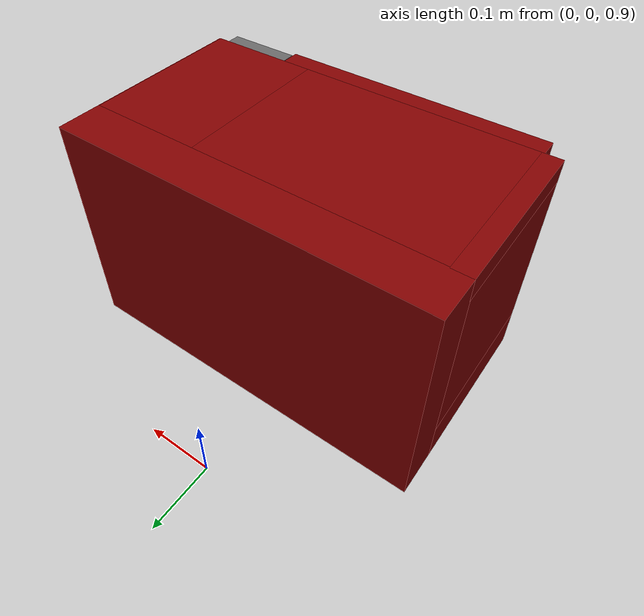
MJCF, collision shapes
<?xml version='1.0' encoding='utf-8'?>
<mujoco model="dual UR5e setup"><compiler angle="radian" autolimits="true" assetdir="assets" meshdir="assets" texturedir="assets" />

  <option sdf_iterations="10" sdf_initpoints="20" />
  <default>
    <default class="dw">
      <default class="dw-visual">
        <geom type="mesh" contype="0" conaffinity="0" group="0" mass="0" />
      </default>
      <default class="dw-collision">
        <geom type="mesh" group="3" friction="0.1" solimp="0.998 0.998 0.001" solref="0.004 1" density="1" />
      </default>
      <default class="dw-collision_basket">
        <geom type="mesh" group="3" friction="0.1" solimp="0.998 0.998 0.001" solref="0.004 1" density="1" />
      </default>
      <default class="dw-collision_holder">
        <geom type="mesh" group="3" friction="0.1" solimp="0.998 0.998 0.001" solref="0.004 1" density="1" />
      </default>
    </default>
    <default class="2f85">
      <mesh scale="0.001 0.001 0.001" />
      <general biastype="affine" />
      <joint axis="1 0 0" />
      <default class="2f85-driver">
        <joint range="0 0.8" armature="0.005" damping="0.1" solimplimit="0.95 0.99 0.001" solreflimit="0.005 1" />
      </default>
      <default class="2f85-follower">
        <joint range="-0.872664 0.872664" armature="0.001" pos="0 -0.018 0.0065" solimplimit="0.95 0.99 0.001" solreflimit="0.005 1" />
      </default>
      <default class="2f85-spring_link">
        <joint range="-0.29670597283 0.8" armature="0.001" stiffness="0.05" springref="2.62" damping="0.00125" />
      </default>
      <default class="2f85-coupler">
        <joint range="-1.57 0" armature="0.001" solimplimit="0.95 0.99 0.001" solreflimit="0.005 1" />
      </default>
      <default class="2f85-visual">
        <geom type="mesh" contype="0" conaffinity="0" group="0" />
      </default>
      <default class="2f85-collision">
        <geom type="mesh" group="3" />
        <default class="2f85-pad_box1">
          <geom mass="0" type="box" pos="0 -0.0026 0.028125" size="0.011 0.004 0.009375" friction="4" solimp="0.95 0.99 0.001" solref="0.004 1" priority="1" rgba="0.55 0.55 0.55 1" />
        </default>
        <default class="2f85-pad_box2">
          <geom mass="0" type="box" pos="0 -0.0026 0.009375" size="0.011 0.004 0.009375" friction="3" solimp="0.95 0.99 0.001" solref="0.004 1" priority="1" rgba="0.45 0.45 0.45 1" />
        </default>
      </default>
    </default>
  </default>
  <asset>
    <texture type="2d" name="groundplane" builtin="checker" mark="edge" rgb1="0.2 0.3 0.4" rgb2="0.1 0.2 0.3" markrgb="0.8 0.8 0.8" width="300" height="300" />
    <material name="groundplane" texture="groundplane" texuniform="true" texrepeat="5 5" reflectance="0.2" />
    <texture type="2d" name="wall_tex_paint" file="kitchen/wall/paint.png" />
    <material name="wall_paint_mat" texture="wall_tex_paint" shininess="0.15" />
    <texture type="2d" name="gr-countertop-marble" file="kitchen/counter/marble.png" />
    <material name="gr-countertop-granite" texture="gr-countertop-marble" texuniform="true" texrepeat="3 3" shininess="0.1" reflectance="0.1" />
    <texture type="2d" name="mw_tex_0" file="microwave/tex_2.png" />
    <texture type="2d" name="mw_tex_1" file="microwave/tex_0.png" />
    <texture type="2d" name="mw_tex_2" file="microwave/tex_1.png" />
    <material name="mw_mat_0" texture="mw_tex_0" shininess="0.25" />
    <material name="mw_mat_1" texture="mw_tex_1" shininess="0.25" />
    <material name="mw_mat_2" texture="mw_tex_2" shininess="0.25" />

    <mesh name="mw_vis0" file="microwave/model_0.obj" scale="0.5542271 0.3608248 0.5542271" />
    <mesh name="mw_vis1" file="microwave/model_1.obj" scale="0.5542271 0.3608248 0.5542271" />
    <mesh name="mw_vis2" file="microwave/model_2.obj" scale="0.5542271 0.3608248 0.5542271" />

    <mesh name="mw_door0" file="microwave/door_0.obj" scale="0.5542271 0.3608248 0.5542271" />
    <mesh name="mw_door1" file="microwave/door_1.obj" scale="0.5542271 0.3608248 0.5542271" />
    <mesh name="mw_door2" file="microwave/door_2.obj" scale="0.5542271 0.3608248 0.5542271" />
    <mesh file="kitchen/cupcake_11/visual/model_normalized_0.obj" name="cupcake_model_normalized_0_vis" scale="0.05 0.05 0.05" refquat="1.0 0.0 0.0 0.0" />
    <mesh file="kitchen/cupcake_11/collision/model_normalized_collision_22.obj" name="cupcake_model_normalized_collision_22._coll" scale="0.05 0.05 0.05" refquat="1.0 0.0 0.0 0.0" />
    <mesh file="kitchen/cupcake_11/collision/model_normalized_collision_23.obj" name="cupcake_model_normalized_collision_23._coll" scale="0.05 0.05 0.05" refquat="1.0 0.0 0.0 0.0" />
    <mesh file="kitchen/cupcake_11/collision/model_normalized_collision_21.obj" name="cupcake_model_normalized_collision_21._coll" scale="0.05 0.05 0.05" refquat="1.0 0.0 0.0 0.0" />
    <mesh file="kitchen/cupcake_11/collision/model_normalized_collision_20.obj" name="cupcake_model_normalized_collision_20._coll" scale="0.05 0.05 0.05" refquat="1.0 0.0 0.0 0.0" />
    <mesh file="kitchen/cupcake_11/collision/model_normalized_collision_24.obj" name="cupcake_model_normalized_collision_24._coll" scale="0.05 0.05 0.05" refquat="1.0 0.0 0.0 0.0" />
    <mesh file="kitchen/cupcake_11/collision/model_normalized_collision_30.obj" name="cupcake_model_normalized_collision_30._coll" scale="0.05 0.05 0.05" refquat="1.0 0.0 0.0 0.0" />
    <mesh file="kitchen/cupcake_11/collision/model_normalized_collision_18.obj" name="cupcake_model_normalized_collision_18._coll" scale="0.05 0.05 0.05" refquat="1.0 0.0 0.0 0.0" />
    <mesh file="kitchen/cupcake_11/collision/model_normalized_collision_19.obj" name="cupcake_model_normalized_collision_19._coll" scale="0.05 0.05 0.05" refquat="1.0 0.0 0.0 0.0" />
    <mesh file="kitchen/cupcake_11/collision/model_normalized_collision_31.obj" name="cupcake_model_normalized_collision_31._coll" scale="0.05 0.05 0.05" refquat="1.0 0.0 0.0 0.0" />
    <mesh file="kitchen/cupcake_11/collision/model_normalized_collision_25.obj" name="cupcake_model_normalized_collision_25._coll" scale="0.05 0.05 0.05" refquat="1.0 0.0 0.0 0.0" />
    <mesh file="kitchen/cupcake_11/collision/model_normalized_collision_27.obj" name="cupcake_model_normalized_collision_27._coll" scale="0.05 0.05 0.05" refquat="1.0 0.0 0.0 0.0" />
    <mesh file="kitchen/cupcake_11/collision/model_normalized_collision_26.obj" name="cupcake_model_normalized_collision_26._coll" scale="0.05 0.05 0.05" refquat="1.0 0.0 0.0 0.0" />
    <mesh file="kitchen/cupcake_11/collision/model_normalized_collision_9.obj" name="cupcake_model_normalized_collision_9._coll" scale="0.05 0.05 0.05" refquat="1.0 0.0 0.0 0.0" />
    <mesh file="kitchen/cupcake_11/collision/model_normalized_collision_8.obj" name="cupcake_model_normalized_collision_8._coll" scale="0.05 0.05 0.05" refquat="1.0 0.0 0.0 0.0" />
    <mesh file="kitchen/cupcake_11/collision/model_normalized_collision_6.obj" name="cupcake_model_normalized_collision_6._coll" scale="0.05 0.05 0.05" refquat="1.0 0.0 0.0 0.0" />
    <mesh file="kitchen/cupcake_11/collision/model_normalized_collision_7.obj" name="cupcake_model_normalized_collision_7._coll" scale="0.05 0.05 0.05" refquat="1.0 0.0 0.0 0.0" />
    <mesh file="kitchen/cupcake_11/collision/model_normalized_collision_5.obj" name="cupcake_model_normalized_collision_5._coll" scale="0.05 0.05 0.05" refquat="1.0 0.0 0.0 0.0" />
    <mesh file="kitchen/cupcake_11/collision/model_normalized_collision_4.obj" name="cupcake_model_normalized_collision_4._coll" scale="0.05 0.05 0.05" refquat="1.0 0.0 0.0 0.0" />
    <mesh file="kitchen/cupcake_11/collision/model_normalized_collision_0.obj" name="cupcake_model_normalized_collision_0._coll" scale="0.05 0.05 0.05" refquat="1.0 0.0 0.0 0.0" />
    <mesh file="kitchen/cupcake_11/collision/model_normalized_collision_1.obj" name="cupcake_model_normalized_collision_1._coll" scale="0.05 0.05 0.05" refquat="1.0 0.0 0.0 0.0" />
    <mesh file="kitchen/cupcake_11/collision/model_normalized_collision_3.obj" name="cupcake_model_normalized_collision_3._coll" scale="0.05 0.05 0.05" refquat="1.0 0.0 0.0 0.0" />
    <mesh file="kitchen/cupcake_11/collision/model_normalized_collision_2.obj" name="cupcake_model_normalized_collision_2._coll" scale="0.05 0.05 0.05" refquat="1.0 0.0 0.0 0.0" />
    <mesh file="kitchen/cupcake_11/collision/model_normalized_collision_17.obj" name="cupcake_model_normalized_collision_17._coll" scale="0.05 0.05 0.05" refquat="1.0 0.0 0.0 0.0" />
    <mesh file="kitchen/cupcake_11/collision/model_normalized_collision_16.obj" name="cupcake_model_normalized_collision_16._coll" scale="0.05 0.05 0.05" refquat="1.0 0.0 0.0 0.0" />
    <mesh file="kitchen/cupcake_11/collision/model_normalized_collision_28.obj" name="cupcake_model_normalized_collision_28._coll" scale="0.05 0.05 0.05" refquat="1.0 0.0 0.0 0.0" />
    <mesh file="kitchen/cupcake_11/collision/model_normalized_collision_14.obj" name="cupcake_model_normalized_collision_14._coll" scale="0.05 0.05 0.05" refquat="1.0 0.0 0.0 0.0" />
    <mesh file="kitchen/cupcake_11/collision/model_normalized_collision_15.obj" name="cupcake_model_normalized_collision_15._coll" scale="0.05 0.05 0.05" refquat="1.0 0.0 0.0 0.0" />
    <mesh file="kitchen/cupcake_11/collision/model_normalized_collision_29.obj" name="cupcake_model_normalized_collision_29._coll" scale="0.05 0.05 0.05" refquat="1.0 0.0 0.0 0.0" />
    <mesh file="kitchen/cupcake_11/collision/model_normalized_collision_11.obj" name="cupcake_model_normalized_collision_11._coll" scale="0.05 0.05 0.05" refquat="1.0 0.0 0.0 0.0" />
    <mesh file="kitchen/cupcake_11/collision/model_normalized_collision_10.obj" name="cupcake_model_normalized_collision_10._coll" scale="0.05 0.05 0.05" refquat="1.0 0.0 0.0 0.0" />
    <mesh file="kitchen/cupcake_11/collision/model_normalized_collision_12.obj" name="cupcake_model_normalized_collision_12._coll" scale="0.05 0.05 0.05" refquat="1.0 0.0 0.0 0.0" />
    <mesh file="kitchen/cupcake_11/collision/model_normalized_collision_13.obj" name="cupcake_model_normalized_collision_13._coll" scale="0.05 0.05 0.05" refquat="1.0 0.0 0.0 0.0" />
    <texture type="2d" name="cupcake_image0" file="kitchen/cupcake_11/visual/image0.png" />
    <material name="cupcake_CupCake_PBR" texture="cupcake_image0" specular="0.5" shininess="0.25" />

    <texture type="2d" name="dw-basket" file="kitchen/dishwasher/basket.png" />
    <texture type="2d" name="dw-body" file="kitchen/dishwasher/body.png" />
    <texture type="2d" name="dw-bottom" file="kitchen/dishwasher/bottom.png" />
    <texture type="2d" name="dw-door" file="kitchen/dishwasher/door.png" />
    <texture type="2d" name="dw-middle" file="kitchen/dishwasher/middle.png" />

    <material name="dw-dishwasher" rgba="0.3 0.3 0.3 1" />
    <material name="dw-basket" texture="dw-basket" rgba="0.3 0.3 0.3 1" />
    <material name="dw-body" texture="dw-body" />
    <material name="dw-bottom" texture="dw-bottom" />
    <material name="dw-door" texture="dw-door" />
    <material name="dw-middle" texture="dw-middle" />

    <mesh name="dw-dish_washer_body_001" file="kitchen/dishwasher/visual/dish_washer_body_001.obj" scale="1.0 1.0 1.0" />
    <mesh name="dw-dish_washer_door_001" file="kitchen/dishwasher/visual/dish_washer_door_001.obj" scale="1.0 1.0 1.0" />
    <mesh name="dw-dish_washer_mid_001" file="kitchen/dishwasher/visual/dish_washer_mid_001.obj" scale="1.0 1.0 1.0" />
    <mesh name="dw-dish_washer_mid_sprinkle" file="kitchen/dishwasher/visual/dish_washer_mid_sprinkle.obj" scale="1.0 1.0 1.0" />
    <mesh name="dw-dish_washer_bottom_001" file="kitchen/dishwasher/visual/dish_washer_bottom_001.obj" scale="1.0 1.0 1.0" />
    <mesh name="dw-dish_washer_bottom_wheel" file="kitchen/dishwasher/visual/dish_washer_bottom_wheel.obj" scale="1.0 1.0 1.0" />
    <mesh name="dw-dish_washer_bottom_plates_holder_001" file="kitchen/dishwasher/visual/dish_washer_bottom_plates_holder_001.obj" scale="1.0 1.0 1.0" />
    <mesh name="dw-dish_washer_bottom_cuttlery_basket_001" file="kitchen/dishwasher/visual/dish_washer_bottom_cuttlery_basket_001.obj" scale="1.0 1.0 1.0" />

    <mesh name="dw-collision_door_001" file="kitchen/dishwasher/collision/collision_door_001.obj" scale="1.0 1.0 1.0" />
    <mesh name="dw-collision_door_003" file="kitchen/dishwasher/collision/collision_door_003.obj" scale="1.0 1.0 1.0" />
    <mesh name="dw-collision_door_004" file="kitchen/dishwasher/collision/collision_door_004.obj" scale="1.0 1.0 1.0" />
    <mesh name="dw-collision_door_006" file="kitchen/dishwasher/collision/collision_door_006.obj" scale="1.0 1.0 1.0" />
    <mesh name="dw-collision_door_007" file="kitchen/dishwasher/collision/collision_door_007.obj" scale="1.0 1.0 1.0" />
    <mesh name="dw-collision_door_008" file="kitchen/dishwasher/collision/collision_door_008.obj" scale="1.0 1.0 1.0" />
    <mesh name="dw-collision_door_009" file="kitchen/dishwasher/collision/collision_door_009.obj" scale="1.0 1.0 1.0" />
    <mesh name="dw-collision_tray_mid_001" file="kitchen/dishwasher/collision/collision_tray_mid_001.obj" scale="1.0 1.0 1.0" />
    <mesh name="dw-collision_tray_mid_002" file="kitchen/dishwasher/collision/collision_tray_mid_002.obj" scale="1.0 1.0 1.0" />
    <mesh name="dw-collision_tray_mid_003" file="kitchen/dishwasher/collision/collision_tray_mid_003.obj" scale="1.0 1.0 1.0" />
    <mesh name="dw-collision_tray_mid_004" file="kitchen/dishwasher/collision/collision_tray_mid_004.obj" scale="1.0 1.0 1.0" />
    <mesh name="dw-collision_tray_mid_005" file="kitchen/dishwasher/collision/collision_tray_mid_005.obj" scale="1.0 1.0 1.0" />
    <mesh name="dw-collision_tray_mid_006" file="kitchen/dishwasher/collision/collision_tray_mid_006.obj" scale="1.0 1.0 1.0" />
    <mesh name="dw-collision_tray_mid_007" file="kitchen/dishwasher/collision/collision_tray_mid_007.obj" scale="1.0 1.0 1.0" />
    <mesh name="dw-collision_tray_mid_008" file="kitchen/dishwasher/collision/collision_tray_mid_008.obj" scale="1.0 1.0 1.0" />
    <mesh name="dw-collision_tray_mid_009" file="kitchen/dishwasher/collision/collision_tray_mid_009.obj" scale="1.0 1.0 1.0" />
    <mesh name="dw-collision_tray_mid_010" file="kitchen/dishwasher/collision/collision_tray_mid_010.obj" scale="1.0 1.0 1.0" />
    <mesh name="dw-collision_tray_mid_011" file="kitchen/dishwasher/collision/collision_tray_mid_011.obj" scale="1.0 1.0 1.0" />
    <mesh name="dw-collision_tray_mid_012" file="kitchen/dishwasher/collision/collision_tray_mid_012.obj" scale="1.0 1.0 1.0" />
    <mesh name="dw-collision_tray_mid_013" file="kitchen/dishwasher/collision/collision_tray_mid_013.obj" scale="1.0 1.0 1.0" />
    <mesh name="dw-collision_tray_mid_014" file="kitchen/dishwasher/collision/collision_tray_mid_014.obj" scale="1.0 1.0 1.0" />
    <mesh name="dw-collision_tray_mid_015" file="kitchen/dishwasher/collision/collision_tray_mid_015.obj" scale="1.0 1.0 1.0" />
    <mesh name="dw-collision_tray_mid_016" file="kitchen/dishwasher/collision/collision_tray_mid_016.obj" scale="1.0 1.0 1.0" />
    <mesh name="dw-collision_tray_mid_017" file="kitchen/dishwasher/collision/collision_tray_mid_017.obj" scale="1.0 1.0 1.0" />
    <mesh name="dw-collision_tray_mid_018" file="kitchen/dishwasher/collision/collision_tray_mid_018.obj" scale="1.0 1.0 1.0" />
    <mesh name="dw-collision_tray_mid_019" file="kitchen/dishwasher/collision/collision_tray_mid_019.obj" scale="1.0 1.0 1.0" />
    <mesh name="dw-collision_tray_mid_020" file="kitchen/dishwasher/collision/collision_tray_mid_020.obj" scale="1.0 1.0 1.0" />
    <mesh name="dw-collision_tray_mid_021" file="kitchen/dishwasher/collision/collision_tray_mid_021.obj" scale="1.0 1.0 1.0" />
    <mesh name="dw-collision_tray_mid_022" file="kitchen/dishwasher/collision/collision_tray_mid_022.obj" scale="1.0 1.0 1.0" />
    <mesh name="dw-collision_tray_mid_023" file="kitchen/dishwasher/collision/collision_tray_mid_023.obj" scale="1.0 1.0 1.0" />
    <mesh name="dw-collision_tray_mid_024" file="kitchen/dishwasher/collision/collision_tray_mid_024.obj" scale="1.0 1.0 1.0" />
    <mesh name="dw-collision_tray_mid_025" file="kitchen/dishwasher/collision/collision_tray_mid_025.obj" scale="1.0 1.0 1.0" />
    <mesh name="dw-collision_tray_mid_026" file="kitchen/dishwasher/collision/collision_tray_mid_026.obj" scale="1.0 1.0 1.0" />
    <mesh name="dw-collision_tray_mid_027" file="kitchen/dishwasher/collision/collision_tray_mid_027.obj" scale="1.0 1.0 1.0" />
    <mesh name="dw-collision_tray_001" file="kitchen/dishwasher/collision/collision_tray_001.obj" scale="1.0 1.0 1.0" />
    <mesh name="dw-collision_tray_002" file="kitchen/dishwasher/collision/collision_tray_002.obj" scale="1.0 1.0 1.0" />
    <mesh name="dw-collision_tray_003" file="kitchen/dishwasher/collision/collision_tray_003.obj" scale="1.0 1.0 1.0" />
    <mesh name="dw-collision_tray_004" file="kitchen/dishwasher/collision/collision_tray_004.obj" scale="1.0 1.0 1.0" />
    <mesh name="dw-collision_tray_005" file="kitchen/dishwasher/collision/collision_tray_005.obj" scale="1.0 1.0 1.0" />
    <mesh name="dw-collision_tray_006" file="kitchen/dishwasher/collision/collision_tray_006.obj" scale="1.0 1.0 1.0" />
    <mesh name="dw-collision_tray_007" file="kitchen/dishwasher/collision/collision_tray_007.obj" scale="1.0 1.0 1.0" />
    <mesh name="dw-collision_tray_008" file="kitchen/dishwasher/collision/collision_tray_008.obj" scale="1.0 1.0 1.0" />
    <mesh name="dw-collision_tray_009" file="kitchen/dishwasher/collision/collision_tray_009.obj" scale="1.0 1.0 1.0" />
    <mesh name="dw-collision_tray_010" file="kitchen/dishwasher/collision/collision_tray_010.obj" scale="1.0 1.0 1.0" />
    <mesh name="dw-collision_tray_011" file="kitchen/dishwasher/collision/collision_tray_011.obj" scale="1.0 1.0 1.0" />
    <mesh name="dw-collision_tray_012" file="kitchen/dishwasher/collision/collision_tray_012.obj" scale="1.0 1.0 1.0" />
    <mesh name="dw-collision_tray_013" file="kitchen/dishwasher/collision/collision_tray_013.obj" scale="1.0 1.0 1.0" />
    <mesh name="dw-collision_tray_014" file="kitchen/dishwasher/collision/collision_tray_014.obj" scale="1.0 1.0 1.0" />
    <mesh name="dw-collision_tray_015" file="kitchen/dishwasher/collision/collision_tray_015.obj" scale="1.0 1.0 1.0" />
    <mesh name="dw-collision_tray_016" file="kitchen/dishwasher/collision/collision_tray_016.obj" scale="1.0 1.0 1.0" />
    <mesh name="dw-collision_tray_017" file="kitchen/dishwasher/collision/collision_tray_017.obj" scale="1.0 1.0 1.0" />
    <mesh name="dw-collision_tray_018" file="kitchen/dishwasher/collision/collision_tray_018.obj" scale="1.0 1.0 1.0" />
    <mesh name="dw-collision_tray_019" file="kitchen/dishwasher/collision/collision_tray_019.obj" scale="1.0 1.0 1.0" />
    <mesh name="dw-collision_tray_020" file="kitchen/dishwasher/collision/collision_tray_020.obj" scale="1.0 1.0 1.0" />
    <mesh name="dw-collision_tray_021" file="kitchen/dishwasher/collision/collision_tray_021.obj" scale="1.0 1.0 1.0" />
    <mesh name="dw-collision_tray_022" file="kitchen/dishwasher/collision/collision_tray_022.obj" scale="1.0 1.0 1.0" />
    <mesh name="dw-collision_tray_023" file="kitchen/dishwasher/collision/collision_tray_023.obj" scale="1.0 1.0 1.0" />
    <mesh name="dw-collision_tray_024" file="kitchen/dishwasher/collision/collision_tray_024.obj" scale="1.0 1.0 1.0" />
    <mesh name="dw-collision_tray_025" file="kitchen/dishwasher/collision/collision_tray_025.obj" scale="1.0 1.0 1.0" />
    <mesh name="dw-collision_tray_026" file="kitchen/dishwasher/collision/collision_tray_026.obj" scale="1.0 1.0 1.0" />
    <mesh name="dw-collision_tray_027" file="kitchen/dishwasher/collision/collision_tray_027.obj" scale="1.0 1.0 1.0" />
    <mesh name="dw-collision_tray_028" file="kitchen/dishwasher/collision/collision_tray_028.obj" scale="1.0 1.0 1.0" />
    <mesh name="dw-collision_tray_029" file="kitchen/dishwasher/collision/collision_tray_029.obj" scale="1.0 1.0 1.0" />
    <mesh name="dw-collision_tray_030" file="kitchen/dishwasher/collision/collision_tray_030.obj" scale="1.0 1.0 1.0" />
    <mesh name="dw-collision_tray_031" file="kitchen/dishwasher/collision/collision_tray_031.obj" scale="1.0 1.0 1.0" />
    <mesh name="dw-collision_tray_032" file="kitchen/dishwasher/collision/collision_tray_032.obj" scale="1.0 1.0 1.0" />
    <mesh name="dw-collision_tray_033" file="kitchen/dishwasher/collision/collision_tray_033.obj" scale="1.0 1.0 1.0" />
    <mesh name="dw-collision_holder_001" file="kitchen/dishwasher/collision/collision_holder_001.obj" scale="1.0 1.0 1.0" />
    <mesh name="dw-collision_holder_002" file="kitchen/dishwasher/collision/collision_holder_002.obj" scale="1.0 1.0 1.0" />
    <mesh name="dw-collision_holder_003" file="kitchen/dishwasher/collision/collision_holder_003.obj" scale="1.0 1.0 1.0" />
    <mesh name="dw-collision_holder_004" file="kitchen/dishwasher/collision/collision_holder_004.obj" scale="1.0 1.0 1.0" />
    <mesh name="dw-collision_holder_005" file="kitchen/dishwasher/collision/collision_holder_005.obj" scale="1.0 1.0 1.0" />
    <mesh name="dw-collision_holder_006" file="kitchen/dishwasher/collision/collision_holder_006.obj" scale="1.0 1.0 1.0" />
    <mesh name="dw-collision_holder_007" file="kitchen/dishwasher/collision/collision_holder_007.obj" scale="1.0 1.0 1.0" />
    <mesh name="dw-collision_holder_008" file="kitchen/dishwasher/collision/collision_holder_008.obj" scale="1.0 1.0 1.0" />
    <mesh name="dw-collision_holder_009" file="kitchen/dishwasher/collision/collision_holder_009.obj" scale="1.0 1.0 1.0" />
    <mesh name="dw-collision_holder_010" file="kitchen/dishwasher/collision/collision_holder_010.obj" scale="1.0 1.0 1.0" />
    <mesh name="dw-collision_holder_011" file="kitchen/dishwasher/collision/collision_holder_011.obj" scale="1.0 1.0 1.0" />
    <mesh name="dw-collision_holder_012" file="kitchen/dishwasher/collision/collision_holder_012.obj" scale="1.0 1.0 1.0" />
    <mesh name="dw-collision_holder_013" file="kitchen/dishwasher/collision/collision_holder_013.obj" scale="1.0 1.0 1.0" />
    <mesh name="dw-collision_holder_014" file="kitchen/dishwasher/collision/collision_holder_014.obj" scale="1.0 1.0 1.0" />
    <mesh name="dw-collision_dish_washer_mid_sprinkle" file="kitchen/dishwasher/collision/collision_dish_washer_mid_sprinkle.obj" scale="1.0 1.0 1.0" />
    <mesh name="dw-collision_dish_washer_bottom_basket_001" file="kitchen/dishwasher/collision/collision_dish_washer_bottom_basket_001.obj" scale="1.0 1.0 1.0" />
    <mesh name="dw-collision_dish_washer_bottom_basket_002" file="kitchen/dishwasher/collision/collision_dish_washer_bottom_basket_002.obj" scale="1.0 1.0 1.0" />
    <mesh name="dw-collision_dish_washer_bottom_basket_003" file="kitchen/dishwasher/collision/collision_dish_washer_bottom_basket_003.obj" scale="1.0 1.0 1.0" />
    <mesh name="dw-collision_dish_washer_bottom_basket_004" file="kitchen/dishwasher/collision/collision_dish_washer_bottom_basket_004.obj" scale="1.0 1.0 1.0" />
    <mesh name="dw-collision_dish_washer_bottom_basket_005" file="kitchen/dishwasher/collision/collision_dish_washer_bottom_basket_005.obj" scale="1.0 1.0 1.0" />
    <mesh name="dw-collision_dish_washer_bottom_basket_006" file="kitchen/dishwasher/collision/collision_dish_washer_bottom_basket_006.obj" scale="1.0 1.0 1.0" />
    <mesh name="dw-collision_dish_washer_bottom_basket_007" file="kitchen/dishwasher/collision/collision_dish_washer_bottom_basket_007.obj" scale="1.0 1.0 1.0" />
    <mesh name="dw-collision_dish_washer_bottom_basket_008" file="kitchen/dishwasher/collision/collision_dish_washer_bottom_basket_008.obj" scale="1.0 1.0 1.0" />
    <mesh name="dw-collision_dish_washer_bottom_basket_009" file="kitchen/dishwasher/collision/collision_dish_washer_bottom_basket_009.obj" scale="1.0 1.0 1.0" />
    <mesh name="dw-collision_dish_washer_bottom_basket_010" file="kitchen/dishwasher/collision/collision_dish_washer_bottom_basket_010.obj" scale="1.0 1.0 1.0" />
    <mesh name="dw-collision_dish_washer_bottom_basket_011" file="kitchen/dishwasher/collision/collision_dish_washer_bottom_basket_011.obj" scale="1.0 1.0 1.0" />
    <mesh name="dw-collision_dish_washer_bottom_basket_012" file="kitchen/dishwasher/collision/collision_dish_washer_bottom_basket_012.obj" scale="1.0 1.0 1.0" />
    <mesh name="dw-collision_dish_washer_bottom_basket_013" file="kitchen/dishwasher/collision/collision_dish_washer_bottom_basket_013.obj" scale="1.0 1.0 1.0" />
    <mesh name="dw-collision_dish_washer_bottom_basket_014" file="kitchen/dishwasher/collision/collision_dish_washer_bottom_basket_014.obj" scale="1.0 1.0 1.0" />
    <mesh name="dw-collision_dish_washer_bottom_basket_015" file="kitchen/dishwasher/collision/collision_dish_washer_bottom_basket_015.obj" scale="1.0 1.0 1.0" />
    <texture type="2d" name="stack_D_drawer_tex_lam" file="kitchen/drawer/laminate.png" />
    <texture type="2d" name="stack_D_drawer_tex_metal" file="kitchen/drawer/metal.png" />
    <material name="stack_D_drawer_lam_mat" texture="stack_D_drawer_tex_lam" shininess="0.1" reflectance="0.1" />
    <material name="stack_D_drawer_face_mat" texture="stack_D_drawer_tex_lam" shininess="0.1" reflectance="0.1" />
    <material name="stack_D_drawer_handle_mat" texture="stack_D_drawer_tex_metal" shininess="0.8" reflectance="0.8" />
    <texture type="2d" name="single-cabinet_tex_body" file="kitchen/cabinet/laminate.png" />
    <texture type="2d" name="single-cabinet_tex_metal" file="kitchen/cabinet/metal.png" />
    <material name="single-cabinet_body_mat" texture="single-cabinet_tex_body" shininess="0.1" reflectance="0.1" />
    <material name="single-cabinet_door_mat" texture="single-cabinet_tex_body" shininess="0.1" reflectance="0.1" />
    <material name="single-cabinet_handle_mat" texture="single-cabinet_tex_metal" shininess="0.8" reflectance="0.8" />
    <texture type="2d" name="stack_E_drawer_tex_lam" file="kitchen/drawer/laminate.png" />
    <texture type="2d" name="stack_E_drawer_tex_metal" file="kitchen/drawer/metal.png" />
    <material name="stack_E_drawer_lam_mat" texture="stack_E_drawer_tex_lam" shininess="0.1" reflectance="0.1" />
    <material name="stack_E_drawer_face_mat" texture="stack_E_drawer_tex_lam" shininess="0.1" reflectance="0.1" />
    <material name="stack_E_drawer_handle_mat" texture="stack_E_drawer_tex_metal" shininess="0.8" reflectance="0.8" />

    <texture type="2d" name="cab_tex_body" file="kitchen/cabinet/laminate.png" />
    <texture type="2d" name="cab_tex_metal" file="kitchen/cabinet/metal.png" />
    <material name="cab_body_mat" texture="cab_tex_body" shininess="0.1" reflectance="0.1" />
    <material name="cab_door_mat" texture="cab_tex_body" shininess="0.1" reflectance="0.1" />
    <material name="cab_handle_mat" texture="cab_tex_metal" shininess="0.8" reflectance="0.8" />
    <texture name="texspot" type="2d" file="vuer-mug/vuer.png" />
    <material name="matspot" texture="texspot" />
    <mesh name="spot" file="vuer-mug/mug.obj" scale="0.00933 0.0142 0.00933">
      <plugin instance="v-mug-sdf" />
    </mesh>
    <material class="2f85" name="2f85-metal" rgba="0.58 0.58 0.58 1" />
    <material class="2f85" name="2f85-silicone" rgba="0.1882 0.1882 0.1882 1" />
    <material class="2f85" name="2f85-gray" rgba="0.4627 0.4627 0.4627 1" />
    <material class="2f85" name="2f85-black" rgba="0.149 0.149 0.149 1" />
    <mesh class="2f85" file="robotiq_2f85/base_mount.stl" />
    <mesh class="2f85" file="robotiq_2f85/base.stl" />
    <mesh class="2f85" file="robotiq_2f85/driver.stl" />
    <mesh class="2f85" file="robotiq_2f85/coupler.stl" />
    <mesh class="2f85" file="robotiq_2f85/follower.stl" />
    <mesh class="2f85" file="robotiq_2f85/pad.stl" />
    <mesh class="2f85" file="robotiq_2f85/silicone_pad.stl" />
    <mesh class="2f85" file="robotiq_2f85/spring_link.stl" />
  <texture name="white_sky" type="skybox" builtin="flat" rgb1="1 1 1" rgb2="1 1 1" width="16" height="16" /></asset>
  <visual>
    <headlight diffuse="0.6 0.6 0.6" ambient="0.3 0.3 0.3" specular="0 0 0" />
    <rgba haze="0.15 0.25 0.35 1" />
    <global azimuth="150" elevation="-20" offwidth="1280" offheight="1024" />
  </visual>
  <extension>
    <plugin plugin="mujoco.sdf.sdflib">
      <instance name="v-mug-sdf">
        <config key="aabb" value="0" />
      </instance>
    </plugin>
  </extension>
  <worldbody><body name="mw" pos="0.035 -0.3 1.09" quat="1 0 0 0">
        <body name="mw_main">
          <site name="mw_site" pos="0 0 0" size="0.02" />

          <geom name="mw_g0" type="mesh" mesh="mw_vis0" material="mw_mat_1" contype="0" conaffinity="0" group="0" />
          <geom name="mw_g1" type="mesh" mesh="mw_vis1" material="mw_mat_2" contype="0" conaffinity="0" group="0" />
          <geom name="mw_g2" type="mesh" mesh="mw_vis2" material="mw_mat_0" contype="0" conaffinity="0" group="0" />

          <geom name="mw_panel_top" size="0.05265155 0.011907209999999998 0.1385566" pos="0.19952169999999997 -0.1331442 0.01607256" type="box" contype="0" conaffinity="0" group="0" rgba="0.4 0.4 0.4 1" />
          <geom name="mw_panel_cap" size="0.05265155 0.01082473 0.006096496" pos="0.19952169999999997 -0.1306186 0.1607256" type="box" contype="0" conaffinity="0" group="0" rgba="0.4 0.4 0.4 1" />
          <geom name="mw_panel_base" size="0.05265155 0.01082473 0.009421859999999999" pos="0.19952169999999997 -0.1309791 -0.1319059" type="box" contype="0" conaffinity="0" group="0" rgba="0.4 0.4 0.4 1" />

          <geom name="mw_col_top" size="0.2688 0.03247426 0.16737629999999998" pos="0.0 0.15154649999999997 0.0" type="box" group="3" rgba="0.5 0 0 0.5" />
          <geom name="mw_col_back" size="0.2688 0.1205155 0.030482479999999996" pos="0.0 0.0 -0.1374485" type="box" group="3" rgba="0.5 0 0 0.5" />
          <geom name="mw_col_left" size="0.013855659999999999 0.1205155 0.16737629999999998" pos="-0.25494419999999995 0.0 0.0" type="box" group="3" rgba="0.5 0 0 0.5" />
          <geom name="mw_col_right" size="0.0820253 0.1205155 0.16737629999999998" pos="0.1856659 0.0 0.0" type="box" group="3" rgba="0.5 0 0 0.5" />
          <geom name="mw_col_face" size="0.2688 0.1205155 0.01607256" pos="0.0 0.0 0.15130359999999998" type="box" group="3" rgba="0.5 0 0 0.5" />

          <geom name="mw_btn_start" size="0.016626819999999997 0.007793799999999999 0.013855659999999999" pos="0.23554649999999996 -0.13891779999999998 -0.0720496" type="box" contype="0" conaffinity="0" group="0" rgba="0 0.5 0 0.5" />
          <geom name="mw_btn_stop" size="0.016626819999999997 0.007793799999999999 0.013855659999999999" pos="0.16626819999999998 -0.13891779999999998 -0.0720496" type="box" contype="0" conaffinity="0" group="0" rgba="0 0.5 0 0.5" />

          <geom name="mw_tray" type="cylinder" size="0.1006558 0.002771132" pos="-0.06650721 -0.00721651 -0.1080744" contype="0" conaffinity="0" group="0" rgba="0 1 0 0.5" />
          <body name="mw_door">
            <geom name="mw_d0" type="mesh" mesh="mw_door0" material="mw_mat_1" contype="0" conaffinity="0" group="0" />
            <geom name="mw_d1" type="mesh" mesh="mw_door1" material="mw_mat_2" contype="0" conaffinity="0" group="0" />
            <geom name="mw_d2" type="mesh" mesh="mw_door2" material="mw_mat_0" contype="0" conaffinity="0" group="0" />

            <geom name="mw_door_col" size="0.19503259999999997 0.01335054 0.1546293" pos="-0.04988038999999999 -0.13386589999999998 0.012747209999999998" type="box" group="3" rgba="0.5 0 0 0.5" />
            <geom name="mw_handle" type="cylinder" size="0.012193019999999999 0.06494845" pos="0.11306259999999999 -0.171031 0.02161488" group="3" rgba="0.5 0 0 0.5" />

            <geom name="mw_pin_top_v" size="0.014964109999999997 0.01695876 0.01163876" pos="0.11306259999999999 -0.16345349999999997 0.1307978" type="box" contype="0" conaffinity="0" group="0" rgba="0.5 0 0 0.5" />
            <geom name="mw_pin_bot_v" size="0.014964109999999997 0.01695876 0.01163876" pos="0.11306259999999999 -0.16345349999999997 -0.0881223" type="box" contype="0" conaffinity="0" group="0" rgba="0.5 0 0 0.5" />
          </body>
        </body>
      </body>
    </worldbody></mujoco>
